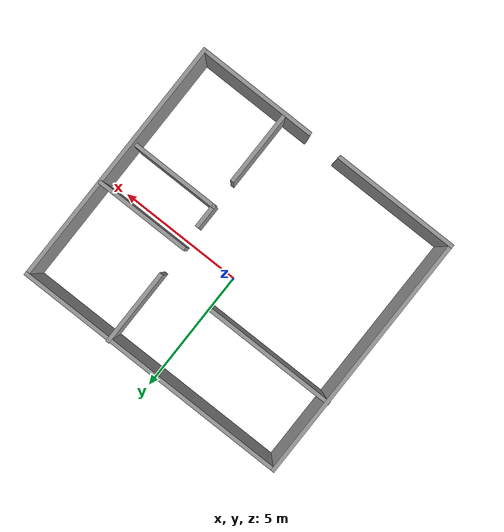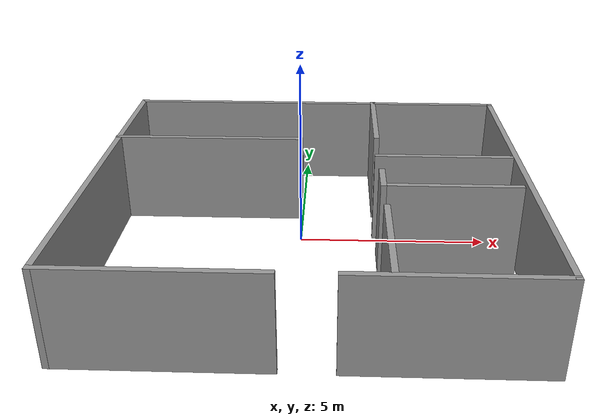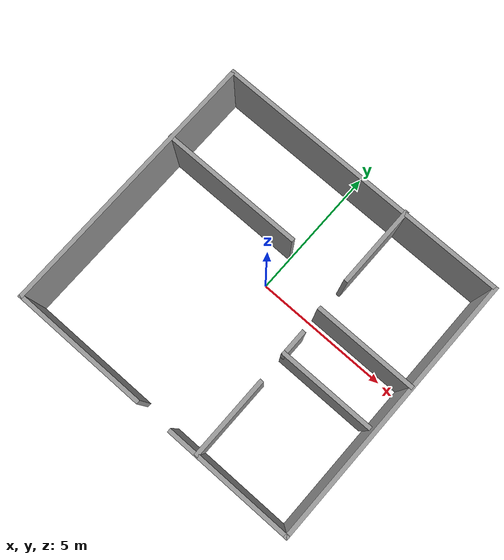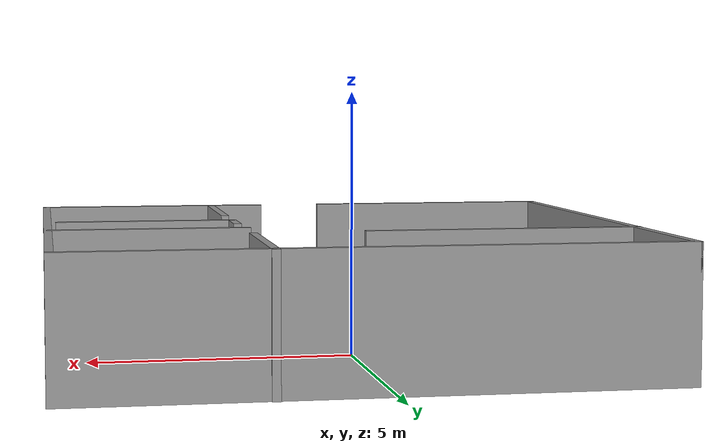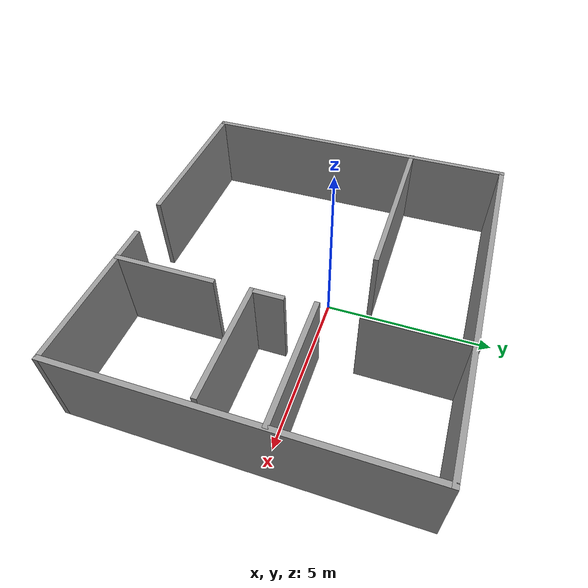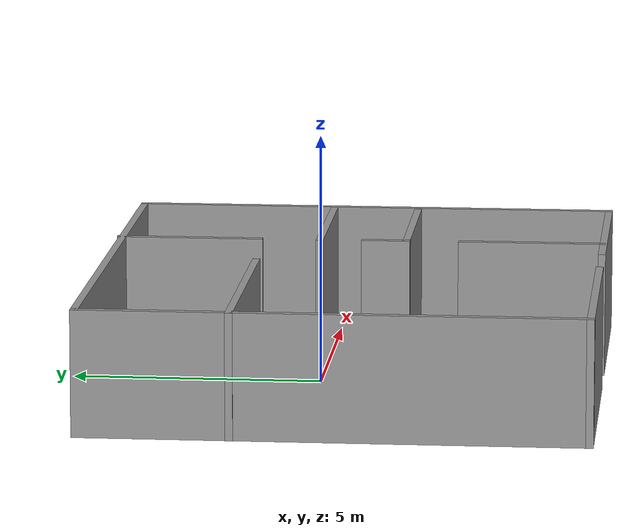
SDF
<?xml version='1.0'?>
<sdf version='1.6'>
  <model name='model1'>
    <pose frame=''>0.245814 -0.644174 0 0 -0 0</pose>
    <link name='Wall_0'>
      <collision name='Wall_0_Collision'>
        <geometry>
          <box>
            <size>5 0.15 2.5</size>
          </box>
        </geometry>
        <pose frame=''>0 0 1.25 0 -0 0</pose>
      </collision>
      <visual name='Wall_0_Visual'>
        <pose frame=''>0 0 1.25 0 -0 0</pose>
        <geometry>
          <box>
            <size>5 0.15 2.5</size>
          </box>
        </geometry>
        <material>
          <script>
            <uri>file://media/materials/scripts/gazebo.material</uri>
            <name>Gazebo/Grey</name>
          </script>
          <ambient>1 1 1 1</ambient>
        </material>
        <meta>
          <layer>0</layer>
        </meta>
      </visual>
      <pose frame=''>-2.99176 -4.94439 0 0 -0 3.14159</pose>
    </link>
    <link name='Wall_1'>
      <collision name='Wall_1_Collision'>
        <geometry>
          <box>
            <size>10 0.15 2.5</size>
          </box>
        </geometry>
        <pose frame=''>0 0 1.25 0 -0 0</pose>
      </collision>
      <visual name='Wall_1_Visual'>
        <pose frame=''>0 0 1.25 0 -0 0</pose>
        <geometry>
          <box>
            <size>10 0.15 2.5</size>
          </box>
        </geometry>
        <material>
          <script>
            <uri>file://media/materials/scripts/gazebo.material</uri>
            <name>Gazebo/Grey</name>
          </script>
          <ambient>1 1 1 1</ambient>
        </material>
        <meta>
          <layer>0</layer>
        </meta>
      </visual>
      <pose frame=''>-5.41676 -0.019392 0 0 -0 1.5708</pose>
    </link>
    <link name='Wall_10'>
      <collision name='Wall_10_Collision'>
        <geometry>
          <box>
            <size>3 0.15 2.5</size>
          </box>
        </geometry>
        <pose frame=''>0 0 1.25 0 -0 0</pose>
      </collision>
      <visual name='Wall_10_Visual'>
        <pose frame=''>0 0 1.25 0 -0 0</pose>
        <geometry>
          <box>
            <size>3 0.15 2.5</size>
          </box>
        </geometry>
        <material>
          <script>
            <uri>file://media/materials/scripts/gazebo.material</uri>
            <name>Gazebo/Grey</name>
          </script>
          <ambient>1 1 1 1</ambient>
        </material>
        <meta>
          <layer>0</layer>
        </meta>
      </visual>
      <pose frame=''>1.80664 3.51939 0 0 -0 -1.5708</pose>
    </link>
    <link name='Wall_12'>
      <collision name='Wall_12_Collision'>
        <geometry>
          <box>
            <size>3.75 0.15 2.5</size>
          </box>
        </geometry>
        <pose frame=''>0 0 1.25 0 -0 0</pose>
      </collision>
      <visual name='Wall_12_Visual'>
        <pose frame=''>0 0 1.25 0 -0 0</pose>
        <geometry>
          <box>
            <size>3.75 0.15 2.5</size>
          </box>
        </geometry>
        <material>
          <script>
            <uri>file://media/materials/scripts/gazebo.material</uri>
            <name>Gazebo/Grey</name>
          </script>
          <ambient>1 1 1 1</ambient>
        </material>
        <meta>
          <layer>0</layer>
        </meta>
      </visual>
      <pose frame=''>3.58351 0.850274 0 0 -0 0</pose>
    </link>
    <link name='Wall_14'>
      <collision name='Wall_14_Collision'>
        <geometry>
          <box>
            <size>1 0.15 2.5</size>
          </box>
        </geometry>
        <pose frame=''>0 0 1.25 0 -0 0</pose>
      </collision>
      <visual name='Wall_14_Visual'>
        <pose frame=''>0 0 1.25 0 -0 0</pose>
        <geometry>
          <box>
            <size>1 0.15 2.5</size>
          </box>
        </geometry>
        <material>
          <script>
            <uri>file://media/materials/scripts/gazebo.material</uri>
            <name>Gazebo/Grey</name>
          </script>
          <ambient>1 1 1 1</ambient>
        </material>
        <meta>
          <layer>0</layer>
        </meta>
      </visual>
      <pose frame=''>1.8529 -0.49995 0 0 -0 -1.5708</pose>
    </link>
    <link name='Wall_15'>
      <collision name='Wall_15_Collision'>
        <geometry>
          <box>
            <size>3.5 0.15 2.5</size>
          </box>
        </geometry>
        <pose frame=''>0 0 1.25 0 -0 0</pose>
      </collision>
      <visual name='Wall_15_Visual'>
        <pose frame=''>0 0 1.25 0 -0 0</pose>
        <geometry>
          <box>
            <size>3.5 0.15 2.5</size>
          </box>
        </geometry>
        <material>
          <script>
            <uri>file://media/materials/scripts/gazebo.material</uri>
            <name>Gazebo/Grey</name>
          </script>
          <ambient>1 1 1 1</ambient>
        </material>
        <meta>
          <layer>0</layer>
        </meta>
      </visual>
      <pose frame=''>3.5279 -0.92495 0 0 -0 0</pose>
    </link>
    <link name='Wall_2'>
      <collision name='Wall_2_Collision'>
        <geometry>
          <box>
            <size>11 0.15 2.5</size>
          </box>
        </geometry>
        <pose frame=''>0 0 1.25 0 -0 0</pose>
      </collision>
      <visual name='Wall_2_Visual'>
        <pose frame=''>0 0 1.25 0 -0 0</pose>
        <geometry>
          <box>
            <size>11 0.15 2.5</size>
          </box>
        </geometry>
        <material>
          <script>
            <uri>file://media/materials/scripts/gazebo.material</uri>
            <name>Gazebo/Grey</name>
          </script>
          <ambient>1 1 1 1</ambient>
        </material>
        <meta>
          <layer>0</layer>
        </meta>
      </visual>
      <pose frame=''>0.00824 4.90561 0 0 -0 0</pose>
    </link>
    <link name='Wall_3'>
      <collision name='Wall_3_Collision'>
        <geometry>
          <box>
            <size>10 0.15 2.5</size>
          </box>
        </geometry>
        <pose frame=''>0 0 1.25 0 -0 0</pose>
      </collision>
      <visual name='Wall_3_Visual'>
        <pose frame=''>0 0 1.25 0 -0 0</pose>
        <geometry>
          <box>
            <size>10 0.15 2.5</size>
          </box>
        </geometry>
        <material>
          <script>
            <uri>file://media/materials/scripts/gazebo.material</uri>
            <name>Gazebo/Grey</name>
          </script>
          <ambient>1 1 1 1</ambient>
        </material>
        <meta>
          <layer>0</layer>
        </meta>
      </visual>
      <pose frame=''>5.43324 -0.019392 0 0 -0 -1.5708</pose>
    </link>
    <link name='Wall_4'>
      <collision name='Wall_4_Collision'>
        <geometry>
          <box>
            <size>4.75 0.15 2.5</size>
          </box>
        </geometry>
        <pose frame=''>0 0 1.25 0 -0 0</pose>
      </collision>
      <visual name='Wall_4_Visual'>
        <pose frame=''>0 0 1.25 0 -0 0</pose>
        <geometry>
          <box>
            <size>4.75 0.15 2.5</size>
          </box>
        </geometry>
        <material>
          <script>
            <uri>file://media/materials/scripts/gazebo.material</uri>
            <name>Gazebo/Grey</name>
          </script>
          <ambient>1 1 1 1</ambient>
        </material>
        <meta>
          <layer>0</layer>
        </meta>
      </visual>
      <pose frame=''>3.13324 -4.94439 0 0 -0 3.14159</pose>
    </link>
    <link name='Wall_6'>
      <collision name='Wall_6_Collision'>
        <geometry>
          <box>
            <size>3 0.15 2.5</size>
          </box>
        </geometry>
        <pose frame=''>0 0 1.25 0 -0 0</pose>
      </collision>
      <visual name='Wall_6_Visual'>
        <pose frame=''>0 0 1.25 0 -0 0</pose>
        <geometry>
          <box>
            <size>3 0.15 2.5</size>
          </box>
        </geometry>
        <material>
          <script>
            <uri>file://media/materials/scripts/gazebo.material</uri>
            <name>Gazebo/Grey</name>
          </script>
          <ambient>1 1 1 1</ambient>
        </material>
        <meta>
          <layer>0</layer>
        </meta>
      </visual>
      <pose frame=''>1.87603 -3.48425 0 0 -0 1.5708</pose>
    </link>
    <link name='Wall_8'>
      <collision name='Wall_8_Collision'>
        <geometry>
          <box>
            <size>5.25 0.15 2.5</size>
          </box>
        </geometry>
        <pose frame=''>0 0 1.25 0 -0 0</pose>
      </collision>
      <visual name='Wall_8_Visual'>
        <pose frame=''>0 0 1.25 0 -0 0</pose>
        <geometry>
          <box>
            <size>5.25 0.15 2.5</size>
          </box>
        </geometry>
        <material>
          <script>
            <uri>file://media/materials/scripts/gazebo.material</uri>
            <name>Gazebo/Grey</name>
          </script>
          <ambient>1 1 1 1</ambient>
        </material>
        <meta>
          <layer>0</layer>
        </meta>
      </visual>
      <pose frame=''>-2.88324 1.93741 0 0 -0 0</pose>
    </link>
    <static>1</static>
  </model>
</sdf>
